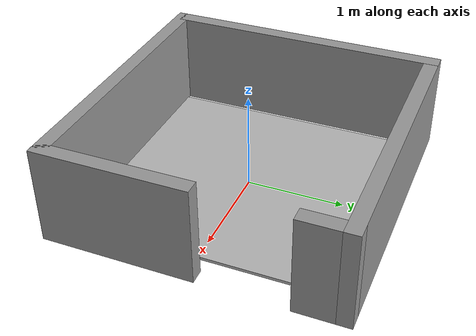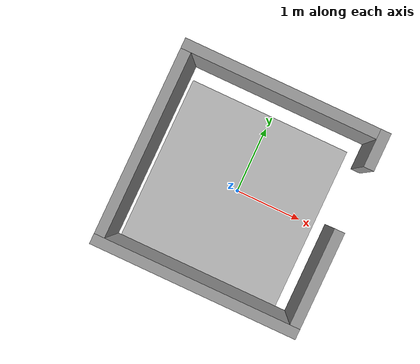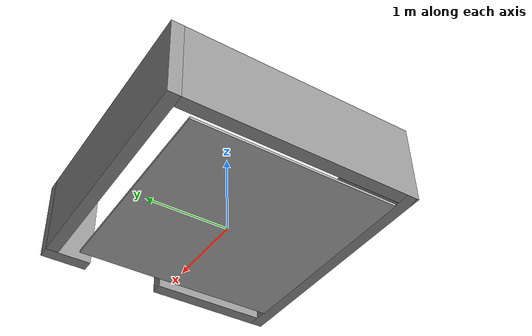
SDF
<?xml version='1.0'?>
<sdf version='1.6'>
  <model name='exercicioDoisMundoMilena'>
    <model name='aulagazebo_planta'>
      <link name='Wall_22'>
        <collision name='Wall_22_Collision'>
          <geometry>
            <box>
              <size>3 0.15 1</size>
            </box>
          </geometry>
          <pose frame=''>0 0 0.5 0 -0 0</pose>
        </collision>
        <visual name='Wall_22_Visual'>
          <pose frame=''>0 0 0.5 0 -0 0</pose>
          <geometry>
            <box>
              <size>3 0.15 1</size>
            </box>
          </geometry>
          <material>
            <script>
              <uri>file://media/materials/scripts/gazebo.material</uri>
              <name>Gazebo/Grey</name>
            </script>
            <ambient>1 1 1 1</ambient>
          </material>
        </visual>
        <pose frame=''>0 -1.425 0 0 -0 0</pose>
      </link>
      <link name='Wall_23'>
        <pose frame=''>1.425 0 0 0 -0 1.5708</pose>
        <visual name='Wall_23_Visual_0'>
          <pose frame=''>-0.724238 0 0.5 0 -0 0</pose>
          <geometry>
            <box>
              <size>1.55152 0.15 1</size>
            </box>
          </geometry>
          <material>
            <script>
              <uri>file://media/materials/scripts/gazebo.material</uri>
              <name>Gazebo/Grey</name>
            </script>
            <ambient>1 1 1 1</ambient>
          </material>
        </visual>
        <collision name='Wall_23_Collision_0'>
          <geometry>
            <box>
              <size>1.55152 0.15 1</size>
            </box>
          </geometry>
          <pose frame=''>-0.724238 0 0.5 0 -0 0</pose>
        </collision>
        <visual name='Wall_23_Visual_1'>
          <pose frame=''>1.22576 0 0.5 0 -0 0</pose>
          <geometry>
            <box>
              <size>0.548477 0.15 1</size>
            </box>
          </geometry>
          <material>
            <script>
              <uri>file://media/materials/scripts/gazebo.material</uri>
              <name>Gazebo/Grey</name>
            </script>
            <ambient>1 1 1 1</ambient>
          </material>
        </visual>
        <collision name='Wall_23_Collision_1'>
          <geometry>
            <box>
              <size>0.548477 0.15 1</size>
            </box>
          </geometry>
          <pose frame=''>1.22576 0 0.5 0 -0 0</pose>
        </collision>
      </link>
      <link name='Wall_24'>
        <collision name='Wall_24_Collision'>
          <geometry>
            <box>
              <size>3 0.15 1</size>
            </box>
          </geometry>
          <pose frame=''>0 0 0.5 0 -0 0</pose>
        </collision>
        <visual name='Wall_24_Visual'>
          <pose frame=''>0 0 0.5 0 -0 0</pose>
          <geometry>
            <box>
              <size>3 0.15 1</size>
            </box>
          </geometry>
          <material>
            <script>
              <uri>file://media/materials/scripts/gazebo.material</uri>
              <name>Gazebo/Grey</name>
            </script>
            <ambient>1 1 1 1</ambient>
          </material>
        </visual>
        <pose frame=''>0 1.425 0 0 -0 3.14159</pose>
      </link>
      <link name='Wall_25'>
        <collision name='Wall_25_Collision'>
          <geometry>
            <box>
              <size>3 0.15 1</size>
            </box>
          </geometry>
          <pose frame=''>0 0 0.5 0 -0 0</pose>
        </collision>
        <visual name='Wall_25_Visual'>
          <pose frame=''>0 0 0.5 0 -0 0</pose>
          <geometry>
            <box>
              <size>3 0.15 1</size>
            </box>
          </geometry>
          <material>
            <script>
              <uri>file://media/materials/scripts/gazebo.material</uri>
              <name>Gazebo/Grey</name>
            </script>
            <ambient>1 1 1 1</ambient>
          </material>
        </visual>
        <pose frame=''>-1.425 0 0 0 0 -1.5708</pose>
      </link>
      <static>1</static>
      <pose frame=''>0.027365 0.049117 0 0 -0 0</pose>
    </model>
    <model name='my_ground_plane_aurelio'>
      <static>1</static>
      <link name='link'>
        <collision name='collision'>
          <geometry>
            <box>
              <size>2.5 2.5 0.03</size>
            </box>
          </geometry>
        </collision>
        <visual name='visual'>
          <cast_shadows>0</cast_shadows>
          <geometry>
            <box>
              <size>2.5 2.5 0.03</size>
            </box>
          </geometry>
          <material>
            <script>
              <uri>model://my_ground_plane_milena/materials/scripts</uri>
              <uri>model://my_ground_plane_milena/materials/textures/</uri>
              <name>MyGroundPlaneMilena/Image</name>
            </script>
          </material>
        </visual>
      </link>
      <pose frame=''>-0.027363 -0.049123 0 0 -0 0</pose>
    </model>
    <static>0</static>
    <allow_auto_disable>1</allow_auto_disable>
  </model>
</sdf>
